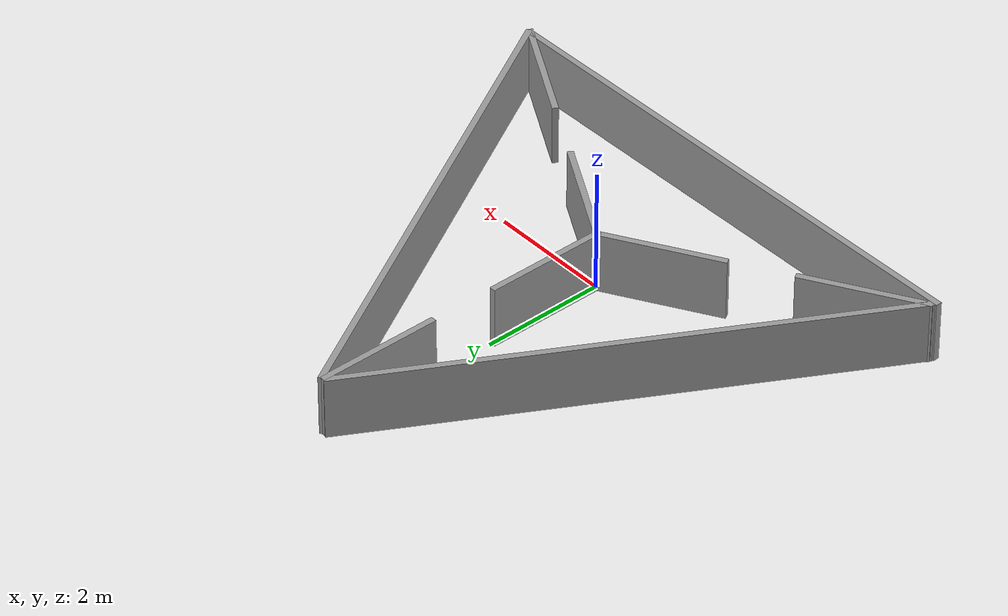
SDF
<?xml version='1.0'?>
<sdf version='1.7'>
  <model name='2m_tri'>
    <link name='link_1'>
      <inertial>
        <mass>1</mass>
        <inertia>
          <ixx>0.166667</ixx>
          <ixy>0</ixy>
          <ixz>0</ixz>
          <iyy>0.166667</iyy>
          <iyz>0</iyz>
          <izz>0.166667</izz>
        </inertia>
        <pose>0 0 0 0 -0 0</pose>
      </inertial>
      <pose>-0.021412 0.965428 0.5 0 -0 0</pose>
      <gravity>1</gravity>
      <self_collide>0</self_collide>
      <kinematic>0</kinematic>
      <enable_wind>0</enable_wind>
      <visual name='visual'>
        <pose>0 0 0 0 -0 0</pose>
        <geometry>
          <box>
            <size>0.1 2 1</size>
          </box>
        </geometry>
        <material>
          <lighting>1</lighting>
          <script>
            <uri>file://media/materials/scripts/gazebo.material</uri>
            <name>Gazebo/Grey</name>
          </script>
          <shader type='pixel'>
            <normal_map>__default__</normal_map>
          </shader>
          <ambient>0.3 0.3 0.3 1</ambient>
          <diffuse>0.7 0.7 0.7 1</diffuse>
          <specular>0.01 0.01 0.01 1</specular>
          <emissive>0 0 0 1</emissive>
        </material>
        <transparency>0</transparency>
        <cast_shadows>1</cast_shadows>
      </visual>
      <collision name='collision'>
        <laser_retro>0</laser_retro>
        <max_contacts>10</max_contacts>
        <pose>0 0 0 0 -0 0</pose>
        <geometry>
          <box>
            <size>0.1 2 1</size>
          </box>
        </geometry>
        <surface>
          <friction>
            <ode>
              <mu>1</mu>
              <mu2>1</mu2>
              <fdir1>0 0 0</fdir1>
              <slip1>0</slip1>
              <slip2>0</slip2>
            </ode>
            <torsional>
              <coefficient>1</coefficient>
              <patch_radius>0</patch_radius>
              <surface_radius>0</surface_radius>
              <use_patch_radius>1</use_patch_radius>
              <ode>
                <slip>0</slip>
              </ode>
            </torsional>
          </friction>
          <bounce>
            <restitution_coefficient>0</restitution_coefficient>
            <threshold>1e+06</threshold>
          </bounce>
          <contact>
            <collide_without_contact>0</collide_without_contact>
            <collide_without_contact_bitmask>1</collide_without_contact_bitmask>
            <collide_bitmask>1</collide_bitmask>
            <ode>
              <soft_cfm>0</soft_cfm>
              <soft_erp>0.2</soft_erp>
              <kp>1e+13</kp>
              <kd>1</kd>
              <max_vel>0.01</max_vel>
              <min_depth>0</min_depth>
            </ode>
            <bullet>
              <split_impulse>1</split_impulse>
              <split_impulse_penetration_threshold>-0.01</split_impulse_penetration_threshold>
              <soft_cfm>0</soft_cfm>
              <soft_erp>0.2</soft_erp>
              <kp>1e+13</kp>
              <kd>1</kd>
            </bullet>
          </contact>
        </surface>
      </collision>
    </link>
    <link name='link_1_clone'>
      <inertial>
        <mass>1</mass>
        <inertia>
          <ixx>0.166667</ixx>
          <ixy>0</ixy>
          <ixz>0</ixz>
          <iyy>0.166667</iyy>
          <iyz>0</iyz>
          <izz>0.166667</izz>
        </inertia>
        <pose>0 0 0 0 -0 0</pose>
      </inertial>
      <pose>0.800347 -0.458131 0.5 0 -0 1.0472</pose>
      <gravity>1</gravity>
      <self_collide>0</self_collide>
      <kinematic>0</kinematic>
      <enable_wind>0</enable_wind>
      <visual name='visual'>
        <pose>0 0 0 0 -0 0</pose>
        <geometry>
          <box>
            <size>0.1 2 1</size>
          </box>
        </geometry>
        <material>
          <lighting>1</lighting>
          <script>
            <uri>file://media/materials/scripts/gazebo.material</uri>
            <name>Gazebo/Grey</name>
          </script>
          <shader type='pixel'>
            <normal_map>__default__</normal_map>
          </shader>
          <ambient>0.3 0.3 0.3 1</ambient>
          <diffuse>0.7 0.7 0.7 1</diffuse>
          <specular>0.01 0.01 0.01 1</specular>
          <emissive>0 0 0 1</emissive>
        </material>
        <transparency>0</transparency>
        <cast_shadows>1</cast_shadows>
      </visual>
      <collision name='collision'>
        <laser_retro>0</laser_retro>
        <max_contacts>10</max_contacts>
        <pose>0 0 0 0 -0 0</pose>
        <geometry>
          <box>
            <size>0.1 2 1</size>
          </box>
        </geometry>
        <surface>
          <friction>
            <ode>
              <mu>1</mu>
              <mu2>1</mu2>
              <fdir1>0 0 0</fdir1>
              <slip1>0</slip1>
              <slip2>0</slip2>
            </ode>
            <torsional>
              <coefficient>1</coefficient>
              <patch_radius>0</patch_radius>
              <surface_radius>0</surface_radius>
              <use_patch_radius>1</use_patch_radius>
              <ode>
                <slip>0</slip>
              </ode>
            </torsional>
          </friction>
          <bounce>
            <restitution_coefficient>0</restitution_coefficient>
            <threshold>1e+06</threshold>
          </bounce>
          <contact>
            <collide_without_contact>0</collide_without_contact>
            <collide_without_contact_bitmask>1</collide_without_contact_bitmask>
            <collide_bitmask>1</collide_bitmask>
            <ode>
              <soft_cfm>0</soft_cfm>
              <soft_erp>0.2</soft_erp>
              <kp>1e+13</kp>
              <kd>1</kd>
              <max_vel>0.01</max_vel>
              <min_depth>0</min_depth>
            </ode>
            <bullet>
              <split_impulse>1</split_impulse>
              <split_impulse_penetration_threshold>-0.01</split_impulse_penetration_threshold>
              <soft_cfm>0</soft_cfm>
              <soft_erp>0.2</soft_erp>
              <kp>1e+13</kp>
              <kd>1</kd>
            </bullet>
          </contact>
        </surface>
      </collision>
    </link>
    <link name='link_1_clone_0'>
      <inertial>
        <mass>1</mass>
        <inertia>
          <ixx>0.166667</ixx>
          <ixy>0</ixy>
          <ixz>0</ixz>
          <iyy>0.166667</iyy>
          <iyz>0</iyz>
          <izz>0.166667</izz>
        </inertia>
        <pose>0 0 0 0 -0 0</pose>
      </inertial>
      <pose>-0.841894 -0.454329 0.5 0 0 -1.0472</pose>
      <gravity>1</gravity>
      <self_collide>0</self_collide>
      <kinematic>0</kinematic>
      <enable_wind>0</enable_wind>
      <visual name='visual'>
        <pose>0 0 0 0 -0 0</pose>
        <geometry>
          <box>
            <size>0.1 2 1</size>
          </box>
        </geometry>
        <material>
          <lighting>1</lighting>
          <script>
            <uri>file://media/materials/scripts/gazebo.material</uri>
            <name>Gazebo/Grey</name>
          </script>
          <shader type='pixel'>
            <normal_map>__default__</normal_map>
          </shader>
          <ambient>0.3 0.3 0.3 1</ambient>
          <diffuse>0.7 0.7 0.7 1</diffuse>
          <specular>0.01 0.01 0.01 1</specular>
          <emissive>0 0 0 1</emissive>
        </material>
        <transparency>0</transparency>
        <cast_shadows>1</cast_shadows>
      </visual>
      <collision name='collision'>
        <laser_retro>0</laser_retro>
        <max_contacts>10</max_contacts>
        <pose>0 0 0 0 -0 0</pose>
        <geometry>
          <box>
            <size>0.1 2 1</size>
          </box>
        </geometry>
        <surface>
          <friction>
            <ode>
              <mu>1</mu>
              <mu2>1</mu2>
              <fdir1>0 0 0</fdir1>
              <slip1>0</slip1>
              <slip2>0</slip2>
            </ode>
            <torsional>
              <coefficient>1</coefficient>
              <patch_radius>0</patch_radius>
              <surface_radius>0</surface_radius>
              <use_patch_radius>1</use_patch_radius>
              <ode>
                <slip>0</slip>
              </ode>
            </torsional>
          </friction>
          <bounce>
            <restitution_coefficient>0</restitution_coefficient>
            <threshold>1e+06</threshold>
          </bounce>
          <contact>
            <collide_without_contact>0</collide_without_contact>
            <collide_without_contact_bitmask>1</collide_without_contact_bitmask>
            <collide_bitmask>1</collide_bitmask>
            <ode>
              <soft_cfm>0</soft_cfm>
              <soft_erp>0.2</soft_erp>
              <kp>1e+13</kp>
              <kd>1</kd>
              <max_vel>0.01</max_vel>
              <min_depth>0</min_depth>
            </ode>
            <bullet>
              <split_impulse>1</split_impulse>
              <split_impulse_penetration_threshold>-0.01</split_impulse_penetration_threshold>
              <soft_cfm>0</soft_cfm>
              <soft_erp>0.2</soft_erp>
              <kp>1e+13</kp>
              <kd>1</kd>
            </bullet>
          </contact>
        </surface>
      </collision>
    </link>
    <link name='link_1_clone_1'>
      <inertial>
        <mass>1</mass>
        <inertia>
          <ixx>0.166667</ixx>
          <ixy>0</ixy>
          <ixz>0</ixz>
          <iyy>0.166667</iyy>
          <iyz>0</iyz>
          <izz>0.166667</izz>
        </inertia>
        <pose>0 0 0 0 -0 0</pose>
      </inertial>
      <pose>0.00571 4.00413 0.5 0 -0 0</pose>
      <gravity>1</gravity>
      <self_collide>0</self_collide>
      <kinematic>0</kinematic>
      <enable_wind>0</enable_wind>
      <visual name='visual'>
        <pose>0 0 0 0 -0 0</pose>
        <geometry>
          <box>
            <size>0.1 2 1</size>
          </box>
        </geometry>
        <material>
          <lighting>1</lighting>
          <script>
            <uri>file://media/materials/scripts/gazebo.material</uri>
            <name>Gazebo/Grey</name>
          </script>
          <shader type='pixel'>
            <normal_map>__default__</normal_map>
          </shader>
          <ambient>0.3 0.3 0.3 1</ambient>
          <diffuse>0.7 0.7 0.7 1</diffuse>
          <specular>0.01 0.01 0.01 1</specular>
          <emissive>0 0 0 1</emissive>
        </material>
        <transparency>0</transparency>
        <cast_shadows>1</cast_shadows>
      </visual>
      <collision name='collision'>
        <laser_retro>0</laser_retro>
        <max_contacts>10</max_contacts>
        <pose>0 0 0 0 -0 0</pose>
        <geometry>
          <box>
            <size>0.1 2 1</size>
          </box>
        </geometry>
        <surface>
          <friction>
            <ode>
              <mu>1</mu>
              <mu2>1</mu2>
              <fdir1>0 0 0</fdir1>
              <slip1>0</slip1>
              <slip2>0</slip2>
            </ode>
            <torsional>
              <coefficient>1</coefficient>
              <patch_radius>0</patch_radius>
              <surface_radius>0</surface_radius>
              <use_patch_radius>1</use_patch_radius>
              <ode>
                <slip>0</slip>
              </ode>
            </torsional>
          </friction>
          <bounce>
            <restitution_coefficient>0</restitution_coefficient>
            <threshold>1e+06</threshold>
          </bounce>
          <contact>
            <collide_without_contact>0</collide_without_contact>
            <collide_without_contact_bitmask>1</collide_without_contact_bitmask>
            <collide_bitmask>1</collide_bitmask>
            <ode>
              <soft_cfm>0</soft_cfm>
              <soft_erp>0.2</soft_erp>
              <kp>1e+13</kp>
              <kd>1</kd>
              <max_vel>0.01</max_vel>
              <min_depth>0</min_depth>
            </ode>
            <bullet>
              <split_impulse>1</split_impulse>
              <split_impulse_penetration_threshold>-0.01</split_impulse_penetration_threshold>
              <soft_cfm>0</soft_cfm>
              <soft_erp>0.2</soft_erp>
              <kp>1e+13</kp>
              <kd>1</kd>
            </bullet>
          </contact>
        </surface>
      </collision>
    </link>
    <link name='link_1_clone_2'>
      <inertial>
        <mass>4.30688</mass>
        <inertia>
          <ixx>26.9889</ixx>
          <ixy>0</ixy>
          <ixz>0</ixz>
          <iyy>0.362496</iyy>
          <iyz>0</iyz>
          <izz>26.6336</izz>
        </inertia>
        <pose>0 0 0 0 -0 0</pose>
      </inertial>
      <pose>-2.14621 1.25919 0.5 0 0 -0.518643</pose>
      <gravity>1</gravity>
      <self_collide>0</self_collide>
      <kinematic>0</kinematic>
      <enable_wind>0</enable_wind>
      <visual name='visual'>
        <pose>0 0 0 0 -0 0</pose>
        <geometry>
          <box>
            <size>0.1 8.61379 1</size>
          </box>
        </geometry>
        <material>
          <lighting>1</lighting>
          <script>
            <uri>file://media/materials/scripts/gazebo.material</uri>
            <name>Gazebo/Grey</name>
          </script>
          <shader type='pixel'>
            <normal_map>__default__</normal_map>
          </shader>
          <ambient>0.3 0.3 0.3 1</ambient>
          <diffuse>0.7 0.7 0.7 1</diffuse>
          <specular>0.01 0.01 0.01 1</specular>
          <emissive>0 0 0 1</emissive>
        </material>
        <transparency>0</transparency>
        <cast_shadows>1</cast_shadows>
      </visual>
      <collision name='collision'>
        <laser_retro>0</laser_retro>
        <max_contacts>10</max_contacts>
        <pose>0 0 0 0 -0 0</pose>
        <geometry>
          <box>
            <size>0.1 8.61379 1</size>
          </box>
        </geometry>
        <surface>
          <friction>
            <ode>
              <mu>1</mu>
              <mu2>1</mu2>
              <fdir1>0 0 0</fdir1>
              <slip1>0</slip1>
              <slip2>0</slip2>
            </ode>
            <torsional>
              <coefficient>1</coefficient>
              <patch_radius>0</patch_radius>
              <surface_radius>0</surface_radius>
              <use_patch_radius>1</use_patch_radius>
              <ode>
                <slip>0</slip>
              </ode>
            </torsional>
          </friction>
          <bounce>
            <restitution_coefficient>0</restitution_coefficient>
            <threshold>1e+06</threshold>
          </bounce>
          <contact>
            <collide_without_contact>0</collide_without_contact>
            <collide_without_contact_bitmask>1</collide_without_contact_bitmask>
            <collide_bitmask>1</collide_bitmask>
            <ode>
              <soft_cfm>0</soft_cfm>
              <soft_erp>0.2</soft_erp>
              <kp>1e+13</kp>
              <kd>1</kd>
              <max_vel>0.01</max_vel>
              <min_depth>0</min_depth>
            </ode>
            <bullet>
              <split_impulse>1</split_impulse>
              <split_impulse_penetration_threshold>-0.01</split_impulse_penetration_threshold>
              <soft_cfm>0</soft_cfm>
              <soft_erp>0.2</soft_erp>
              <kp>1e+13</kp>
              <kd>1</kd>
            </bullet>
          </contact>
        </surface>
      </collision>
    </link>
    <link name='link_1_clone_2_clone'>
      <inertial>
        <mass>4.30688</mass>
        <inertia>
          <ixx>26.9889</ixx>
          <ixy>0</ixy>
          <ixz>0</ixz>
          <iyy>0.362496</iyy>
          <iyz>0</iyz>
          <izz>26.6336</izz>
        </inertia>
        <pose>0 0 0 0 -0 0</pose>
      </inertial>
      <pose>2.1687 1.26803 0.5 0 0 -2.6209</pose>
      <gravity>1</gravity>
      <self_collide>0</self_collide>
      <kinematic>0</kinematic>
      <enable_wind>0</enable_wind>
      <visual name='visual'>
        <pose>0 0 0 0 -0 0</pose>
        <geometry>
          <box>
            <size>0.1 8.61379 1</size>
          </box>
        </geometry>
        <material>
          <lighting>1</lighting>
          <script>
            <uri>file://media/materials/scripts/gazebo.material</uri>
            <name>Gazebo/Grey</name>
          </script>
          <shader type='pixel'>
            <normal_map>__default__</normal_map>
          </shader>
          <ambient>0.3 0.3 0.3 1</ambient>
          <diffuse>0.7 0.7 0.7 1</diffuse>
          <specular>0.01 0.01 0.01 1</specular>
          <emissive>0 0 0 1</emissive>
        </material>
        <transparency>0</transparency>
        <cast_shadows>1</cast_shadows>
      </visual>
      <collision name='collision'>
        <laser_retro>0</laser_retro>
        <max_contacts>10</max_contacts>
        <pose>0 0 0 0 -0 0</pose>
        <geometry>
          <box>
            <size>0.1 8.61379 1</size>
          </box>
        </geometry>
        <surface>
          <friction>
            <ode>
              <mu>1</mu>
              <mu2>1</mu2>
              <fdir1>0 0 0</fdir1>
              <slip1>0</slip1>
              <slip2>0</slip2>
            </ode>
            <torsional>
              <coefficient>1</coefficient>
              <patch_radius>0</patch_radius>
              <surface_radius>0</surface_radius>
              <use_patch_radius>1</use_patch_radius>
              <ode>
                <slip>0</slip>
              </ode>
            </torsional>
          </friction>
          <bounce>
            <restitution_coefficient>0</restitution_coefficient>
            <threshold>1e+06</threshold>
          </bounce>
          <contact>
            <collide_without_contact>0</collide_without_contact>
            <collide_without_contact_bitmask>1</collide_without_contact_bitmask>
            <collide_bitmask>1</collide_bitmask>
            <ode>
              <soft_cfm>0</soft_cfm>
              <soft_erp>0.2</soft_erp>
              <kp>1e+13</kp>
              <kd>1</kd>
              <max_vel>0.01</max_vel>
              <min_depth>0</min_depth>
            </ode>
            <bullet>
              <split_impulse>1</split_impulse>
              <split_impulse_penetration_threshold>-0.01</split_impulse_penetration_threshold>
              <soft_cfm>0</soft_cfm>
              <soft_erp>0.2</soft_erp>
              <kp>1e+13</kp>
              <kd>1</kd>
            </bullet>
          </contact>
        </surface>
      </collision>
    </link>
    <link name='link_1_clone_2_clone_0'>
      <inertial>
        <mass>4.30688</mass>
        <inertia>
          <ixx>26.9889</ixx>
          <ixy>0</ixy>
          <ixz>0</ixz>
          <iyy>0.362496</iyy>
          <iyz>0</iyz>
          <izz>26.6336</izz>
        </inertia>
        <pose>0 0 0 0 -0 0</pose>
      </inertial>
      <pose>-0.031783 -2.48241 0.5 0 -0 1.57952</pose>
      <gravity>1</gravity>
      <self_collide>0</self_collide>
      <kinematic>0</kinematic>
      <enable_wind>0</enable_wind>
      <visual name='visual'>
        <pose>0 0 0 0 -0 0</pose>
        <geometry>
          <box>
            <size>0.1 8.61379 1</size>
          </box>
        </geometry>
        <material>
          <lighting>1</lighting>
          <script>
            <uri>file://media/materials/scripts/gazebo.material</uri>
            <name>Gazebo/Grey</name>
          </script>
          <shader type='pixel'>
            <normal_map>__default__</normal_map>
          </shader>
          <ambient>0.3 0.3 0.3 1</ambient>
          <diffuse>0.7 0.7 0.7 1</diffuse>
          <specular>0.01 0.01 0.01 1</specular>
          <emissive>0 0 0 1</emissive>
        </material>
        <transparency>0</transparency>
        <cast_shadows>1</cast_shadows>
      </visual>
      <collision name='collision'>
        <laser_retro>0</laser_retro>
        <max_contacts>10</max_contacts>
        <pose>0 0 0 0 -0 0</pose>
        <geometry>
          <box>
            <size>0.1 8.61379 1</size>
          </box>
        </geometry>
        <surface>
          <friction>
            <ode>
              <mu>1</mu>
              <mu2>1</mu2>
              <fdir1>0 0 0</fdir1>
              <slip1>0</slip1>
              <slip2>0</slip2>
            </ode>
            <torsional>
              <coefficient>1</coefficient>
              <patch_radius>0</patch_radius>
              <surface_radius>0</surface_radius>
              <use_patch_radius>1</use_patch_radius>
              <ode>
                <slip>0</slip>
              </ode>
            </torsional>
          </friction>
          <bounce>
            <restitution_coefficient>0</restitution_coefficient>
            <threshold>1e+06</threshold>
          </bounce>
          <contact>
            <collide_without_contact>0</collide_without_contact>
            <collide_without_contact_bitmask>1</collide_without_contact_bitmask>
            <collide_bitmask>1</collide_bitmask>
            <ode>
              <soft_cfm>0</soft_cfm>
              <soft_erp>0.2</soft_erp>
              <kp>1e+13</kp>
              <kd>1</kd>
              <max_vel>0.01</max_vel>
              <min_depth>0</min_depth>
            </ode>
            <bullet>
              <split_impulse>1</split_impulse>
              <split_impulse_penetration_threshold>-0.01</split_impulse_penetration_threshold>
              <soft_cfm>0</soft_cfm>
              <soft_erp>0.2</soft_erp>
              <kp>1e+13</kp>
              <kd>1</kd>
            </bullet>
          </contact>
        </surface>
      </collision>
    </link>
    <link name='link_1_clone_clone'>
      <inertial>
        <mass>1</mass>
        <inertia>
          <ixx>0.166667</ixx>
          <ixy>0</ixy>
          <ixz>0</ixz>
          <iyy>0.166667</iyy>
          <iyz>0</iyz>
          <izz>0.166667</izz>
        </inertia>
        <pose>0 0 0 0 -0 0</pose>
      </inertial>
      <pose>3.45873 -1.98211 0.5 0 -0 1.0472</pose>
      <gravity>1</gravity>
      <self_collide>0</self_collide>
      <kinematic>0</kinematic>
      <enable_wind>0</enable_wind>
      <visual name='visual'>
        <pose>0 0 0 0 -0 0</pose>
        <geometry>
          <box>
            <size>0.1 2 1</size>
          </box>
        </geometry>
        <material>
          <lighting>1</lighting>
          <script>
            <uri>file://media/materials/scripts/gazebo.material</uri>
            <name>Gazebo/Grey</name>
          </script>
          <shader type='pixel'>
            <normal_map>__default__</normal_map>
          </shader>
          <ambient>0.3 0.3 0.3 1</ambient>
          <diffuse>0.7 0.7 0.7 1</diffuse>
          <specular>0.01 0.01 0.01 1</specular>
          <emissive>0 0 0 1</emissive>
        </material>
        <transparency>0</transparency>
        <cast_shadows>1</cast_shadows>
      </visual>
      <collision name='collision'>
        <laser_retro>0</laser_retro>
        <max_contacts>10</max_contacts>
        <pose>0 0 0 0 -0 0</pose>
        <geometry>
          <box>
            <size>0.1 2 1</size>
          </box>
        </geometry>
        <surface>
          <friction>
            <ode>
              <mu>1</mu>
              <mu2>1</mu2>
              <fdir1>0 0 0</fdir1>
              <slip1>0</slip1>
              <slip2>0</slip2>
            </ode>
            <torsional>
              <coefficient>1</coefficient>
              <patch_radius>0</patch_radius>
              <surface_radius>0</surface_radius>
              <use_patch_radius>1</use_patch_radius>
              <ode>
                <slip>0</slip>
              </ode>
            </torsional>
          </friction>
          <bounce>
            <restitution_coefficient>0</restitution_coefficient>
            <threshold>1e+06</threshold>
          </bounce>
          <contact>
            <collide_without_contact>0</collide_without_contact>
            <collide_without_contact_bitmask>1</collide_without_contact_bitmask>
            <collide_bitmask>1</collide_bitmask>
            <ode>
              <soft_cfm>0</soft_cfm>
              <soft_erp>0.2</soft_erp>
              <kp>1e+13</kp>
              <kd>1</kd>
              <max_vel>0.01</max_vel>
              <min_depth>0</min_depth>
            </ode>
            <bullet>
              <split_impulse>1</split_impulse>
              <split_impulse_penetration_threshold>-0.01</split_impulse_penetration_threshold>
              <soft_cfm>0</soft_cfm>
              <soft_erp>0.2</soft_erp>
              <kp>1e+13</kp>
              <kd>1</kd>
            </bullet>
          </contact>
        </surface>
      </collision>
    </link>
    <link name='link_1_clone_clone_0'>
      <inertial>
        <mass>1</mass>
        <inertia>
          <ixx>0.166667</ixx>
          <ixy>0</ixy>
          <ixz>0</ixz>
          <iyy>0.166667</iyy>
          <iyz>0</iyz>
          <izz>0.166667</izz>
        </inertia>
        <pose>0 0 0 0 -0 0</pose>
      </inertial>
      <pose>-3.42638 -1.95358 0.5 0 0 -1.0472</pose>
      <gravity>1</gravity>
      <self_collide>0</self_collide>
      <kinematic>0</kinematic>
      <enable_wind>0</enable_wind>
      <visual name='visual'>
        <pose>0 0 0 0 -0 0</pose>
        <geometry>
          <box>
            <size>0.1 2 1</size>
          </box>
        </geometry>
        <material>
          <lighting>1</lighting>
          <script>
            <uri>file://media/materials/scripts/gazebo.material</uri>
            <name>Gazebo/Grey</name>
          </script>
          <shader type='pixel'>
            <normal_map>__default__</normal_map>
          </shader>
          <ambient>0.3 0.3 0.3 1</ambient>
          <diffuse>0.7 0.7 0.7 1</diffuse>
          <specular>0.01 0.01 0.01 1</specular>
          <emissive>0 0 0 1</emissive>
        </material>
        <transparency>0</transparency>
        <cast_shadows>1</cast_shadows>
      </visual>
      <collision name='collision'>
        <laser_retro>0</laser_retro>
        <max_contacts>10</max_contacts>
        <pose>0 0 0 0 -0 0</pose>
        <geometry>
          <box>
            <size>0.1 2 1</size>
          </box>
        </geometry>
        <surface>
          <friction>
            <ode>
              <mu>1</mu>
              <mu2>1</mu2>
              <fdir1>0 0 0</fdir1>
              <slip1>0</slip1>
              <slip2>0</slip2>
            </ode>
            <torsional>
              <coefficient>1</coefficient>
              <patch_radius>0</patch_radius>
              <surface_radius>0</surface_radius>
              <use_patch_radius>1</use_patch_radius>
              <ode>
                <slip>0</slip>
              </ode>
            </torsional>
          </friction>
          <bounce>
            <restitution_coefficient>0</restitution_coefficient>
            <threshold>1e+06</threshold>
          </bounce>
          <contact>
            <collide_without_contact>0</collide_without_contact>
            <collide_without_contact_bitmask>1</collide_without_contact_bitmask>
            <collide_bitmask>1</collide_bitmask>
            <ode>
              <soft_cfm>0</soft_cfm>
              <soft_erp>0.2</soft_erp>
              <kp>1e+13</kp>
              <kd>1</kd>
              <max_vel>0.01</max_vel>
              <min_depth>0</min_depth>
            </ode>
            <bullet>
              <split_impulse>1</split_impulse>
              <split_impulse_penetration_threshold>-0.01</split_impulse_penetration_threshold>
              <soft_cfm>0</soft_cfm>
              <soft_erp>0.2</soft_erp>
              <kp>1e+13</kp>
              <kd>1</kd>
            </bullet>
          </contact>
        </surface>
      </collision>
    </link>
    <static>0</static>
    <allow_auto_disable>1</allow_auto_disable>
  </model>
</sdf>
